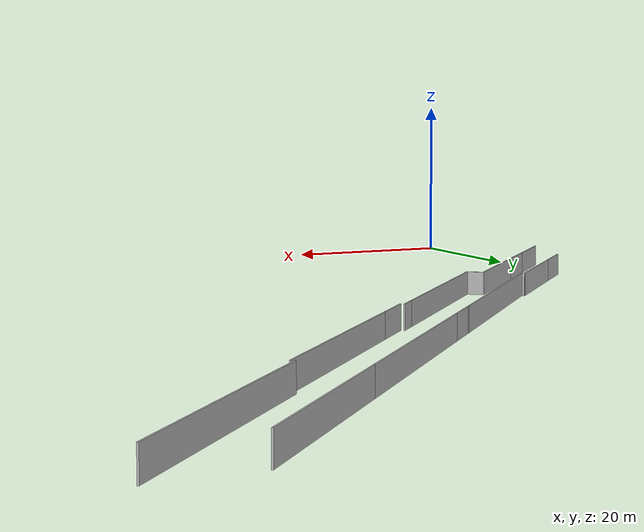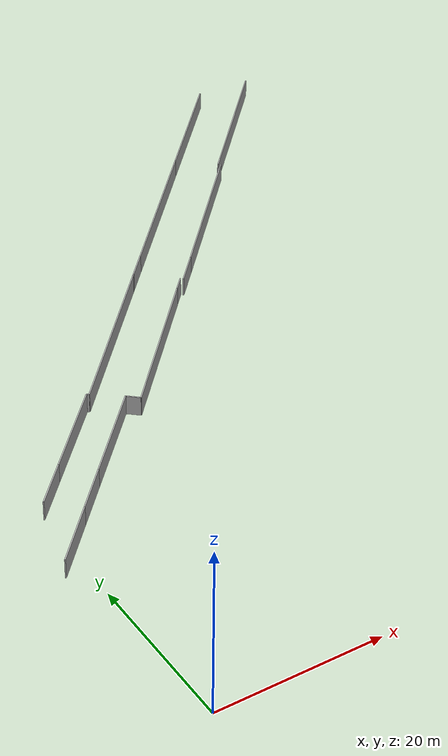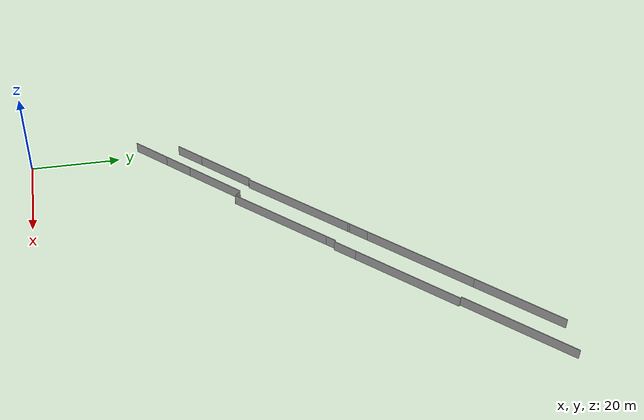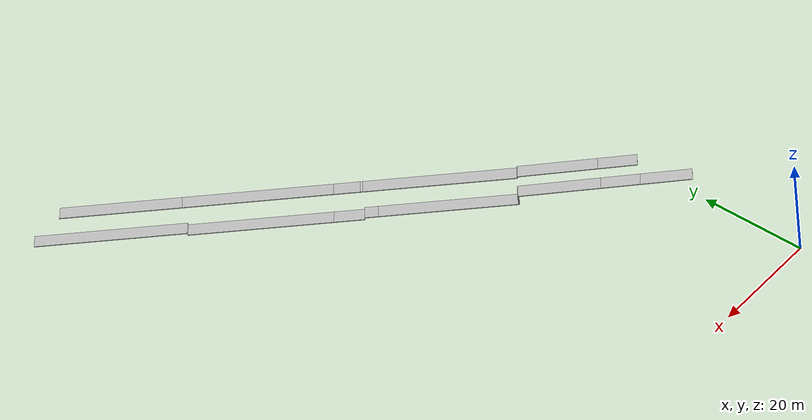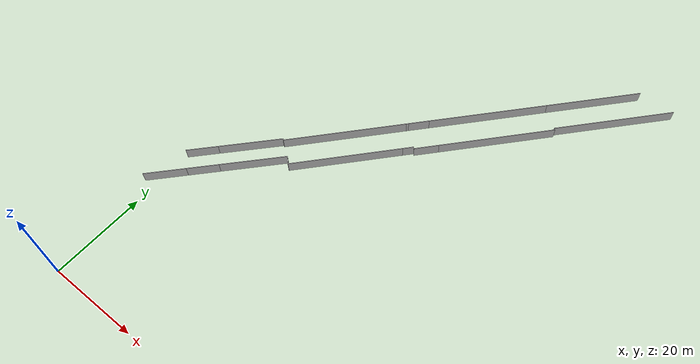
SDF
<?xml version="1.0" ?>
<sdf version="1.6">
  <model name="sps_0824">
    <pose frame="">0 0 0 0 -0 0</pose>
    <static>1</static>
    <self_collide>0</self_collide>
    <allow_auto_disable>0</allow_auto_disable>
    <link name="Wall50">
      <kinematic>0</kinematic>
      <gravity>1</gravity>
      <self_collide>0</self_collide>
      <collision name="collision">
        <geometry>
          <box>
            <size>1.8194 0.15 2.5</size>
          </box>
        </geometry>
        <pose frame="">0 0 0 0 -0 0</pose>
      </collision>
      <visual name="visual">
        <geometry>
          <box>
            <size>1.8194 0.15 2.5</size>
          </box>
        </geometry>
        <pose frame="">0 0 0 0 -0 0</pose>
        <cast_shadows>1</cast_shadows>
        <transparency>0.0</transparency>
      </visual>
      <pose frame="">18.029 45.432 1.25 0 0 -0.728033</pose>
    </link>
    <link name="Wall51">
      <kinematic>0</kinematic>
      <gravity>1</gravity>
      <self_collide>0</self_collide>
      <collision name="collision">
        <geometry>
          <box>
            <size>20.7643 0.15 2.5</size>
          </box>
        </geometry>
        <pose frame="">0 0 0 0 -0 0</pose>
      </collision>
      <visual name="visual">
        <geometry>
          <box>
            <size>20.7643 0.15 2.5</size>
          </box>
        </geometry>
        <pose frame="">0 0 0 0 -0 0</pose>
        <cast_shadows>1</cast_shadows>
        <transparency>0.0</transparency>
      </visual>
      <pose frame="">58.3826 98.386 1.25 0 -0 0.843085</pose>
    </link>
    <link name="Wall132">
      <kinematic>0</kinematic>
      <gravity>1</gravity>
      <self_collide>0</self_collide>
      <collision name="collision">
        <geometry>
          <box>
            <size>23.6953 0.15 2.5</size>
          </box>
        </geometry>
        <pose frame="">0 0 0 0 -0 0</pose>
      </collision>
      <visual name="visual">
        <geometry>
          <box>
            <size>23.6953 0.15 2.5</size>
          </box>
        </geometry>
        <pose frame="">0 0 0 0 -0 0</pose>
        <cast_shadows>1</cast_shadows>
        <transparency>0.0</transparency>
      </visual>
      <pose frame="">26.5887 53.6732 1.25 0 -0 0.843075</pose>
    </link>
    <link name="Wall133">
      <kinematic>0</kinematic>
      <gravity>1</gravity>
      <self_collide>0</self_collide>
      <collision name="collision">
        <geometry>
          <box>
            <size>2.30526 0.15 2.5</size>
          </box>
        </geometry>
        <pose frame="">0 0 0 0 -0 0</pose>
      </collision>
      <visual name="visual">
        <geometry>
          <box>
            <size>2.30526 0.15 2.5</size>
          </box>
        </geometry>
        <pose frame="">0 0 0 0 -0 0</pose>
        <cast_shadows>1</cast_shadows>
        <transparency>0.0</transparency>
      </visual>
      <pose frame="">35.2361 63.3804 1.25 0 -0 0.843075</pose>
    </link>
    <link name="Wall134">
      <kinematic>0</kinematic>
      <gravity>1</gravity>
      <self_collide>0</self_collide>
      <collision name="collision">
        <geometry>
          <box>
            <size>4.43066 0.15 2.5</size>
          </box>
        </geometry>
        <pose frame="">0 0 0 0 -0 0</pose>
      </collision>
      <visual name="visual">
        <geometry>
          <box>
            <size>4.43066 0.15 2.5</size>
          </box>
        </geometry>
        <pose frame="">0 0 0 0 -0 0</pose>
        <cast_shadows>1</cast_shadows>
        <transparency>0.0</transparency>
      </visual>
      <pose frame="">32.996 69.8855 1.25 0 -0 0.84313</pose>
    </link>
    <link name="Wall135">
      <kinematic>0</kinematic>
      <gravity>1</gravity>
      <self_collide>0</self_collide>
      <collision name="collision">
        <geometry>
          <box>
            <size>25.5701 0.15 2.5</size>
          </box>
        </geometry>
        <pose frame="">0 0 0 0 -0 0</pose>
      </collision>
      <visual name="visual">
        <geometry>
          <box>
            <size>25.5701 0.15 2.5</size>
          </box>
        </geometry>
        <pose frame="">0 0 0 0 -0 0</pose>
        <cast_shadows>1</cast_shadows>
        <transparency>0.0</transparency>
      </visual>
      <pose frame="">42.9731 81.0867 1.25 0 -0 0.84313</pose>
    </link>
    <link name="Wall233">
      <kinematic>0</kinematic>
      <gravity>1</gravity>
      <self_collide>0</self_collide>
      <collision name="collision">
        <geometry>
          <box>
            <size>0.320134 0.15 2.5</size>
          </box>
        </geometry>
        <pose frame="">0 0 0 0 -0 0</pose>
      </collision>
      <visual name="visual">
        <geometry>
          <box>
            <size>0.320134 0.15 2.5</size>
          </box>
        </geometry>
        <pose frame="">0 0 0 0 -0 0</pose>
        <cast_shadows>1</cast_shadows>
        <transparency>0.0</transparency>
      </visual>
      <pose frame="">13.8431 48.6249 1.25 0 0 -0.726991</pose>
    </link>
    <link name="Wall300">
      <kinematic>0</kinematic>
      <gravity>1</gravity>
      <self_collide>0</self_collide>
      <collision name="collision">
        <geometry>
          <box>
            <size>25.9467 0.15 2.5</size>
          </box>
        </geometry>
        <pose frame="">0 0 0 0 -0 0</pose>
      </collision>
      <visual name="visual">
        <geometry>
          <box>
            <size>25.9467 0.15 2.5</size>
          </box>
        </geometry>
        <pose frame="">0 0 0 0 -0 0</pose>
        <cast_shadows>1</cast_shadows>
        <transparency>0.0</transparency>
      </visual>
      <pose frame="">22.5919 58.2058 1.25 0 -0 0.843096</pose>
    </link>
    <link name="Wall301">
      <kinematic>0</kinematic>
      <gravity>1</gravity>
      <self_collide>0</self_collide>
      <collision name="collision">
        <geometry>
          <box>
            <size>0.452917 0.15 2.5</size>
          </box>
        </geometry>
        <pose frame="">0 0 0 0 -0 0</pose>
      </collision>
      <visual name="visual">
        <geometry>
          <box>
            <size>0.452917 0.15 2.5</size>
          </box>
        </geometry>
        <pose frame="">0 0 0 0 -0 0</pose>
        <cast_shadows>1</cast_shadows>
        <transparency>0.0</transparency>
      </visual>
      <pose frame="">31.3719 68.0622 1.25 0 -0 0.843096</pose>
    </link>
    <link name="Wall372">
      <kinematic>0</kinematic>
      <gravity>1</gravity>
      <self_collide>0</self_collide>
      <collision name="collision">
        <geometry>
          <box>
            <size>8.74209 0.15 2.5</size>
          </box>
        </geometry>
        <pose frame="">0 0 0 0 -0 0</pose>
      </collision>
      <visual name="visual">
        <geometry>
          <box>
            <size>8.74209 0.15 2.5</size>
          </box>
        </geometry>
        <pose frame="">0 0 0 0 -0 0</pose>
        <cast_shadows>1</cast_shadows>
        <transparency>0.0</transparency>
      </visual>
      <pose frame="">0.487754 27.6845 1.25 0 -0 0.827715</pose>
    </link>
    <link name="Wall373">
      <kinematic>0</kinematic>
      <gravity>1</gravity>
      <self_collide>0</self_collide>
      <collision name="collision">
        <geometry>
          <box>
            <size>6.63984 0.15 2.5</size>
          </box>
        </geometry>
        <pose frame="">0 0 0 0 -0 0</pose>
      </collision>
      <visual name="visual">
        <geometry>
          <box>
            <size>6.63984 0.15 2.5</size>
          </box>
        </geometry>
        <pose frame="">0 0 0 0 -0 0</pose>
        <cast_shadows>1</cast_shadows>
        <transparency>0.0</transparency>
      </visual>
      <pose frame="">2.37756 36.3923 1.25 0 -0 0.827641</pose>
    </link>
    <link name="Wall554">
      <kinematic>0</kinematic>
      <gravity>1</gravity>
      <self_collide>0</self_collide>
      <collision name="collision">
        <geometry>
          <box>
            <size>6.63948 0.15 2.5</size>
          </box>
        </geometry>
        <pose frame="">0 0 0 0 -0 0</pose>
      </collision>
      <visual name="visual">
        <geometry>
          <box>
            <size>6.63948 0.15 2.5</size>
          </box>
        </geometry>
        <pose frame="">0 0 0 0 -0 0</pose>
        <cast_shadows>1</cast_shadows>
        <transparency>0.0</transparency>
      </visual>
      <pose frame="">5.69094 33.348 1.25 0 -0 0.827754</pose>
    </link>
    <link name="Wall555">
      <kinematic>0</kinematic>
      <gravity>1</gravity>
      <self_collide>0</self_collide>
      <collision name="collision">
        <geometry>
          <box>
            <size>5.24737 0.15 2.5</size>
          </box>
        </geometry>
        <pose frame="">0 0 0 0 -0 0</pose>
      </collision>
      <visual name="visual">
        <geometry>
          <box>
            <size>5.24737 0.15 2.5</size>
          </box>
        </geometry>
        <pose frame="">0 0 0 0 -0 0</pose>
        <cast_shadows>1</cast_shadows>
        <transparency>0.0</transparency>
      </visual>
      <pose frame="">38.0462 65.934 1.25 0 -0 0.843087</pose>
    </link>
    <link name="Wall556">
      <kinematic>0</kinematic>
      <gravity>1</gravity>
      <self_collide>0</self_collide>
      <collision name="collision">
        <geometry>
          <box>
            <size>24.7535 0.15 2.5</size>
          </box>
        </geometry>
        <pose frame="">0 0 0 0 -0 0</pose>
      </collision>
      <visual name="visual">
        <geometry>
          <box>
            <size>24.7535 0.15 2.5</size>
          </box>
        </geometry>
        <pose frame="">0 0 0 0 -0 0</pose>
        <cast_shadows>1</cast_shadows>
        <transparency>0.0</transparency>
      </visual>
      <pose frame="">48.0239 77.1348 1.25 0 -0 0.843087</pose>
    </link>
    <link name="Wall626">
      <kinematic>0</kinematic>
      <gravity>1</gravity>
      <self_collide>0</self_collide>
      <collision name="collision">
        <geometry>
          <box>
            <size>13.4426 0.15 2.5</size>
          </box>
        </geometry>
        <pose frame="">0 0 0 0 -0 0</pose>
      </collision>
      <visual name="visual">
        <geometry>
          <box>
            <size>13.4426 0.15 2.5</size>
          </box>
        </geometry>
        <pose frame="">0 0 0 0 -0 0</pose>
        <cast_shadows>1</cast_shadows>
        <transparency>0.0</transparency>
      </visual>
      <pose frame="">9.17367 43.7841 1.25 0 -0 0.827219</pose>
    </link>
    <link name="Wall627">
      <kinematic>0</kinematic>
      <gravity>1</gravity>
      <self_collide>0</self_collide>
      <collision name="collision">
        <geometry>
          <box>
            <size>13.9125 0.15 2.5</size>
          </box>
        </geometry>
        <pose frame="">0 0 0 0 -0 0</pose>
      </collision>
      <visual name="visual">
        <geometry>
          <box>
            <size>13.9125 0.15 2.5</size>
          </box>
        </geometry>
        <pose frame="">0 0 0 0 -0 0</pose>
        <cast_shadows>1</cast_shadows>
        <transparency>0.0</transparency>
      </visual>
      <pose frame="">12.6434 40.915 1.25 0 -0 0.827677</pose>
    </link>
    <link name="Wall628">
      <kinematic>0</kinematic>
      <gravity>1</gravity>
      <self_collide>0</self_collide>
      <collision name="collision">
        <geometry>
          <box>
            <size>26.109 0.15 2.5</size>
          </box>
        </geometry>
        <pose frame="">0 0 0 0 -0 0</pose>
      </collision>
      <visual name="visual">
        <geometry>
          <box>
            <size>26.109 0.15 2.5</size>
          </box>
        </geometry>
        <pose frame="">0 0 0 0 -0 0</pose>
        <cast_shadows>1</cast_shadows>
        <transparency>0.0</transparency>
      </visual>
      <pose frame="">64.6402 96.3905 1.25 0 0 -2.2985</pose>
    </link>
  </model>
</sdf>
